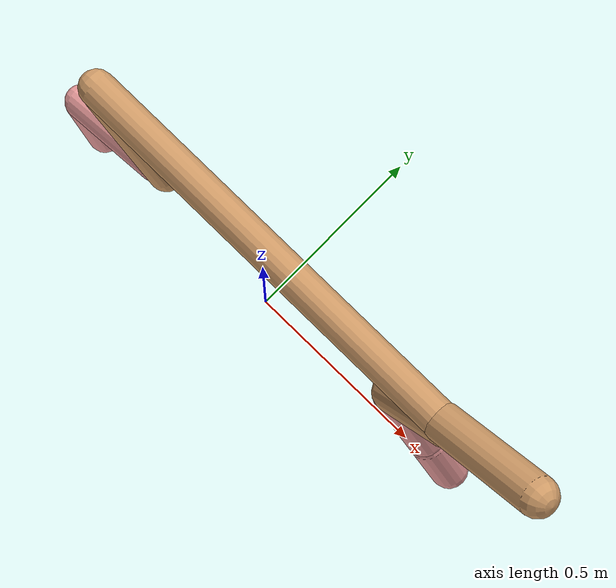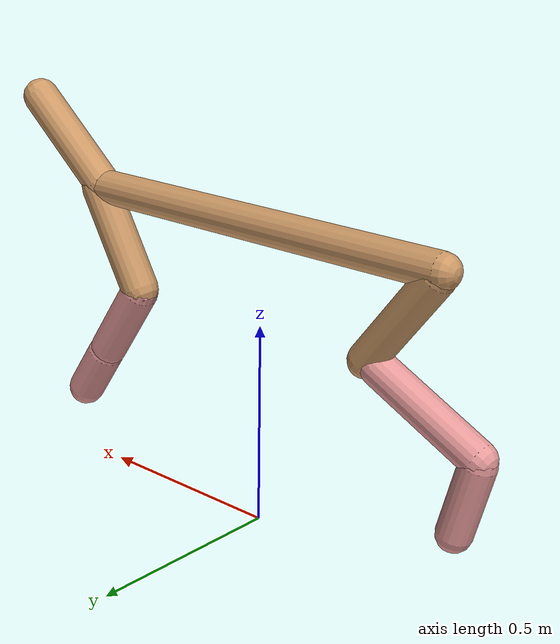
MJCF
<mujoco model="cheetah">
  <compiler angle="radian" coordinate="local" inertiafromgeom="true" settotalmass="14" />
  <default>
    <joint armature=".1" damping=".01" limited="true" solimplimit="0 .8 .03" solreflimit=".02 1" stiffness="8" />
    <geom conaffinity="0" condim="3" contype="1" friction="0.8 .1 .1" rgba="0.8 0.6 .4 1" solimp="0.0 0.8 0.01" solref="0.02 1" />
    <motor ctrllimited="true" ctrlrange="-1 1" />
  </default>
  <size nstack="300000" nuser_geom="1" />
  <option gravity="0 0 -9.81" timestep="0.01" />
  <worldbody>
    <body name="torso" pos="0.0 0.0 0.7432846836363443">
      <joint armature="0" axis="1 0 0" damping="0" limited="false" name="ignorex" pos="0 0 0" stiffness="0" type="slide" />
      <joint armature="0" axis="0 0 1" damping="0" limited="false" name="ignorez" pos="0 0 0" stiffness="0" type="slide" />
      <joint armature="0" axis="0 1 0" damping="0" limited="false" name="ignorey" pos="0 0 0" stiffness="0" type="hinge" />
      <geom fromto="-0.5 0.0 0.0 0.5500910970576608 0.0 0.0" name="torso" size="0.04247504755426163" type="capsule" />
      <geom axisangle="0 1 0 .87" name="head" pos="0.6500910970576607 0.0 0.1" size="0.045667088905741775 0.15" type="capsule" />

      <body name="bthigh" pos="-.5 0 0">
        <joint axis="0 1 0" damping="6" name="bthigh" pos="0 0 0" range="-.52 1.05" stiffness="240" type="hinge" />
        <geom axisangle="0 1 0 -3.8" name="bthigh" pos="0.09966698912386768 0.0 -0.12956708586102797" size="0.042376602451682614 0.1444538215535703" type="capsule" />
        <body name="bshin" pos="0.15933397824773535 0.0 -0.24913417172205593">
          <joint axis="0 1 0" damping="4.5" name="bshin" pos="0 0 0" range="-.785 .785" stiffness="180" type="hinge" />
          <geom axisangle="0 1 0 -2.03" name="bshin" pos="-0.13949463773762955 0.0 -0.06974731886881477" rgba="0.9 0.6 0.6 1" size="0.042376602451682614 0.14943498781403827" type="capsule" />
          <body name="bfoot" pos="-0.2789892754752591 0.0 -0.13949463773762955">
            <joint axis="0 1 0" damping="3" name="bfoot" pos="0 0 0" range="-.4 .785" stiffness="120" type="hinge" />
            <geom axisangle="0 1 0 -.27" name="bfoot" pos="0.02989538176373888 0.0 -0.09666173436942238" rgba="0.9 0.6 0.6 1" size="0.042376602451682614 0.09364592569679732" type="capsule" />
            <inertial mass="10" />
          </body>
        </body>
      </body>
      <body name="fthigh" pos="0.5500910970576607 0.0 0.0">
        <joint axis="0 1 0" damping="4.5" name="fthigh" pos="0 0 0" range="-1.5 0.8" stiffness="180" type="hinge" />
        <geom axisangle="0 1 0 .52" name="fthigh" pos="-0.07303422220202192 0.0 -0.1252015237748947" size="0.04705041135691812 0.13902182314187636" type="capsule" />
        <body name="fshin" pos="-0.14606844440404385 0.0 -0.2504030475497894">
          <joint axis="0 1 0" damping="3" name="fshin" pos="0 0 0" range="-1.2 1.1" stiffness="120" type="hinge" />
          <geom axisangle="0 1 0 -.6" name="fshin" pos="0.0678099727823153 0.0 -0.09389073154474427" rgba="0.9 0.6 0.6 1" size="0.04705041135691812 0.11079934776720973" type="capsule" />
          <body name="ffoot" pos="0.1356199455646306 0.0 -0.18778146308948854">
            <joint axis="0 1 0" damping="1.5" name="ffoot" pos="0 0 0" range="-3.1 -0.3" stiffness="60" type="hinge" />
            <geom axisangle="0 1 0 -.6" name="ffoot" pos="0.046713866619745754 0.0 -0.07266601474182674" rgba="0.9 0.6 0.6 1" size="0.04705041135691812 0.07316938060098757" type="capsule" />
            <inertial mass="10" />
          </body>
        </body>
      </body>
    </body>
  </worldbody>
  <actuator>
    <motor gear="120" joint="bthigh" name="bthigh" />
    <motor gear="90" joint="bshin" name="bshin" />
    <motor gear="60" joint="bfoot" name="bfoot" />
    <motor gear="120" joint="fthigh" name="fthigh" />
    <motor gear="60" joint="fshin" name="fshin" />
    <motor gear="30" joint="ffoot" name="ffoot" />
  </actuator>
</mujoco>
